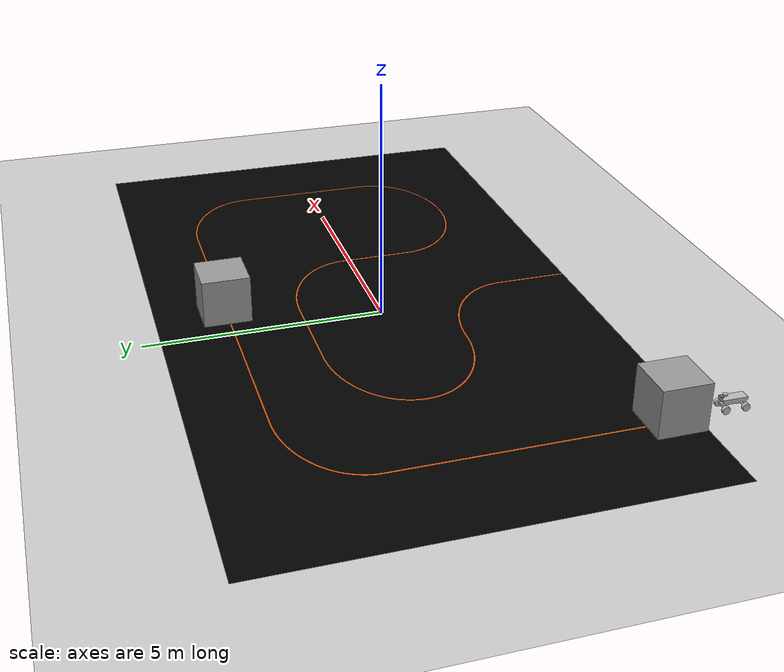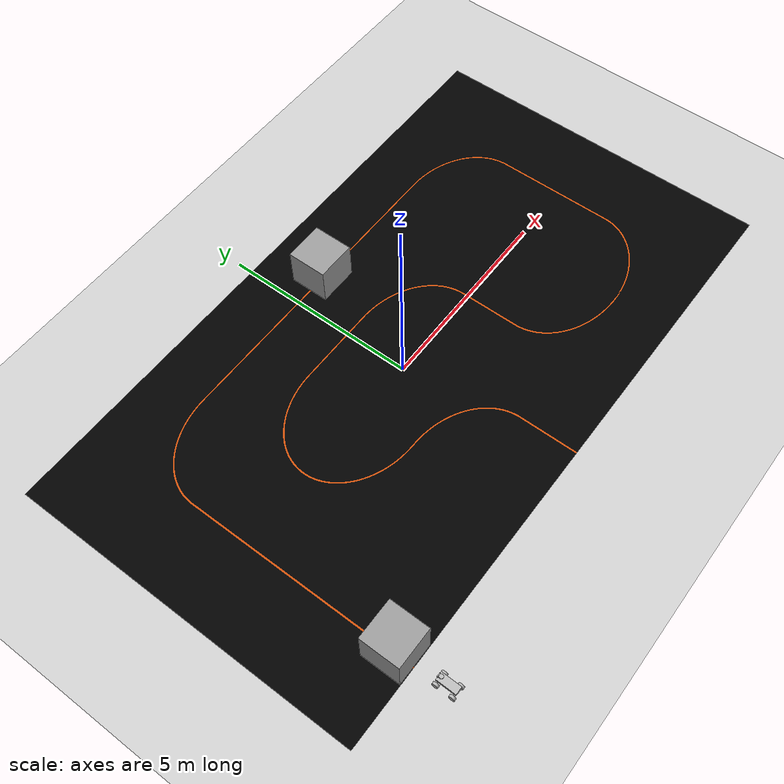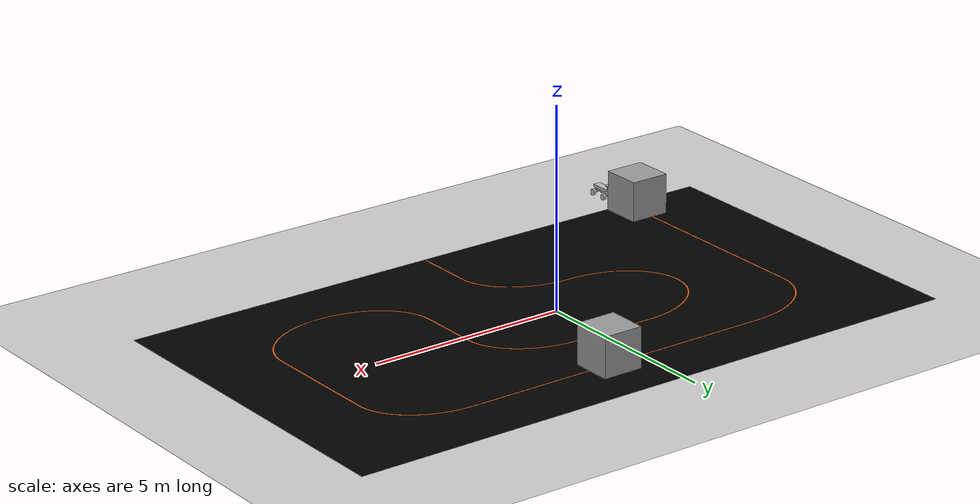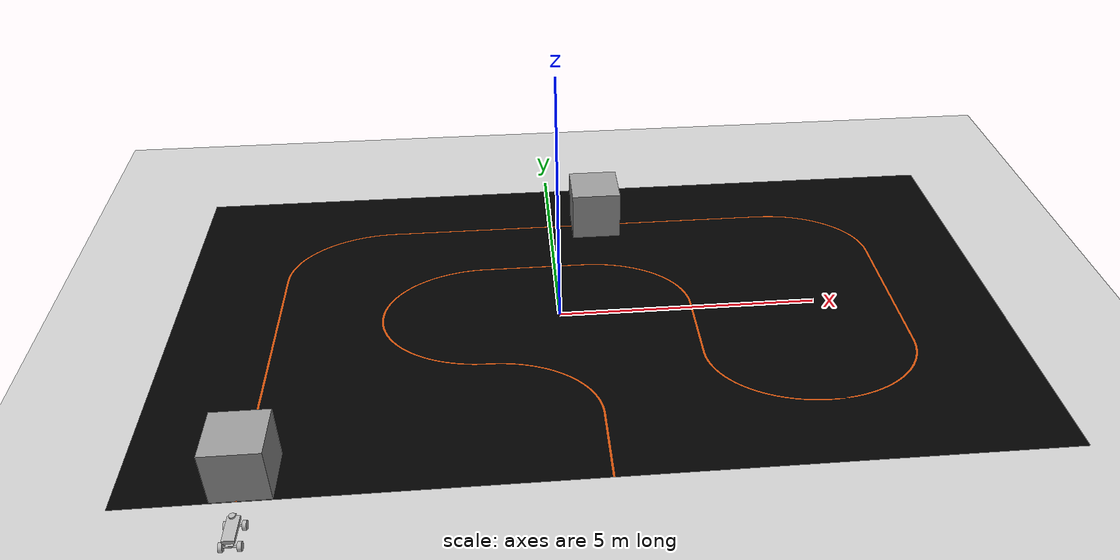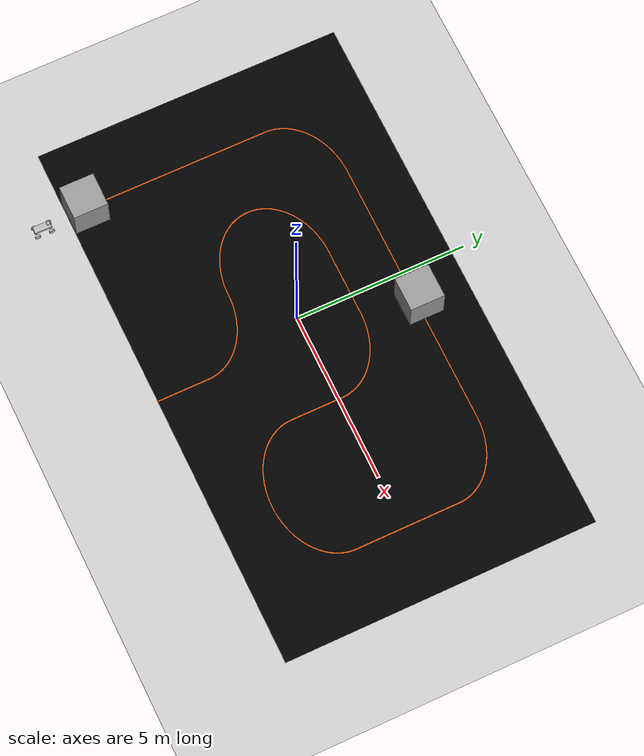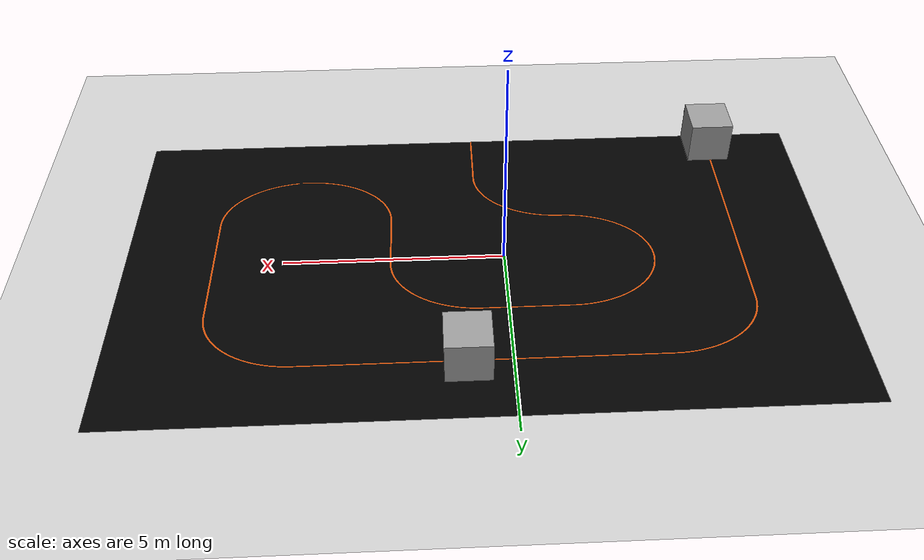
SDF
<sdf version="1.7">
 <world name="default">
  <light name="sun" type="directional">
   <pose>0 0 10 0 -0 0</pose>
   <diffuse>0.8 0.8 0.8 1</diffuse>
   <specular>0.2 0.2 0.2 1</specular>
   <attenuation>
    <range>1000</range>
    <constant>0.9</constant>
    <linear>0.01</linear>
    <quadratic>0.001</quadratic>
   </attenuation>
   <direction>-0.5 0.1 -0.9</direction>
   <spot><inner_angle>0</inner_angle><outer_angle>0</outer_angle><falloff>0</falloff></spot>
  </light>
  <model name="ground_plane">
   <static>1</static>
   <link name="link">
    <collision name="collision">
     <geometry><plane><normal>0 0 1</normal><size>100 100</size></plane></geometry>
     <surface>
      <contact><collide_bitmask>65535</collide_bitmask></contact>
      <friction><ode><mu>100</mu><mu2>50</mu2></ode></friction>
     </surface>
    </collision>
    <visual name="visual">
     <cast_shadows>0</cast_shadows>
     <geometry><plane><normal>0 0 1</normal><size>100 100</size></plane></geometry>
     <material>
      <script><uri>file://media/materials/scripts/gazebo.material</uri><name>Gazebo/Grey</name></script>
     </material>
    </visual>
   </link>
  </model>
  <gravity>0 0 -9.8</gravity>
  <magnetic_field>6e-06 2.3e-05 -4.2e-05</magnetic_field>
  <atmosphere type="adiabatic"/>
  <physics type="ode">
   <max_step_size>0.001</max_step_size>
   <real_time_factor>1</real_time_factor>
   <real_time_update_rate>1000</real_time_update_rate>
  </physics>
  <scene><ambient>0.4 0.4 0.4 1</ambient><background>0.7 0.7 0.7 1</background><shadows>1</shadows></scene>
  <audio><device>default</device></audio>
  <spherical_coordinates>
   <surface_model>EARTH_WGS84</surface_model>
   <latitude_deg>0</latitude_deg>
   <longitude_deg>0</longitude_deg>
   <elevation>0</elevation>
   <heading_deg>0</heading_deg>
  </spherical_coordinates>
  <model name="track_world">
   <static>1</static>
   <link name="track_world">
    <collision name="track_world">
     <geometry><mesh><uri>model://track_world/meshes/track.dae</uri></mesh></geometry>
    </collision>
    <visual name="track_world">
     <cast_shadows>0</cast_shadows>
     <geometry><mesh><uri>model://track_world/meshes/track.dae</uri><scale>2 1.5 1</scale></mesh></geometry>
     <material>
      <script><uri>model://track_world/meshes/track.dae</uri><name>Traffic lisht</name></script>
     </material>
    </visual>
   </link>
   <pose>0.581237 0.120096 0 0 -0 0</pose>
  </model>
  <model name="vuasrl_car">
   <link name="base_link">
    <inertial>
     <pose>0.023448 0 0.017304 0 -0 0</pose>
     <mass>3.034</mass>
     <inertia>
      <ixx>0.0163164</ixx>
      <ixy>0</ixy>
      <ixz>-0.006493</ixz>
      <iyy>0.0558286</iyy>
      <iyz>-2.74336e-13</iyz>
      <izz>0.0505655</izz>
     </inertia>
    </inertial>
    <collision name="base_link_fixed_joint_lump__baseplate_collision">
     <pose>0 0 0.03375 0 -0 0</pose>
     <geometry><box><size>0.5 0.2 0.0675</size></box></geometry>
    </collision>
    <collision name="base_link_fixed_joint_lump__camera_mount_collision_1">
     <pose>0.24 0 0.0605 0 -0 0</pose>
     <geometry><cylinder><length>0.05</length><radius>0.005</radius></cylinder></geometry>
    </collision>
    <collision name="base_link_fixed_joint_lump__camera_collision_2">
     <pose>0.24 0 0.1 0 0.5 0</pose>
     <geometry><box><size>0.024 0.094 0.029</size></box></geometry>
    </collision>
    <collision name="base_link_fixed_joint_lump__front_mount_collision_3">
     <pose>0 0 -0.059 0 -0 0</pose>
     <geometry><box><size>0.5 0.12 0.01</size></box></geometry>
    </collision>
    <collision name="base_link_fixed_joint_lump__front_shaft_collision_4">
     <pose>0.21 0 -0.118 1.5708 -0 0</pose>
     <geometry><cylinder><length>0.285</length><radius>0.018</radius></cylinder></geometry>
    </collision>
    <collision name="base_link_fixed_joint_lump__rear_shaft_collision_5">
     <pose>-0.2 0 -0.118 1.5708 -0 0</pose>
     <geometry><cylinder><length>0.285</length><radius>0.018</radius></cylinder></geometry>
    </collision>
    <collision name="base_link_fixed_joint_lump__laser_sensor_mount_collision_6">
     <pose>0.18 0 0.0925 0 -0 0</pose>
     <geometry><cylinder><length>0.05</length><radius>0.005</radius></cylinder></geometry>
    </collision>
    <collision name="base_link_fixed_joint_lump__laser_sensor_collision_7">
     <pose>0.18 0 0.132 0 -0 0</pose>
     <geometry><cylinder><length>0.029</length><radius>0.05</radius></cylinder></geometry>
    </collision>
    <visual name="base_link_fixed_joint_lump__baseplate_visual">
     <pose>0 0 0.03375 0 -0 0</pose>
     <geometry><box><size>0.5 0.2 0.0675</size></box></geometry>
    </visual>
    <visual name="base_link_fixed_joint_lump__camera_mount_visual_1">
     <pose>0.24 0 0.0605 0 -0 0</pose>
     <geometry><cylinder><length>0.05</length><radius>0.005</radius></cylinder></geometry>
    </visual>
    <visual name="base_link_fixed_joint_lump__camera_visual_2">
     <pose>0.24 0 0.1 0 0.5 0</pose>
     <geometry><box><size>0.024 0.094 0.029</size></box></geometry>
    </visual>
    <visual name="base_link_fixed_joint_lump__front_mount_visual_3">
     <pose>0 0 -0.059 0 -0 0</pose>
     <geometry><box><size>0.5 0.12 0.01</size></box></geometry>
    </visual>
    <visual name="base_link_fixed_joint_lump__front_shaft_visual_4">
     <pose>0.21 0 -0.118 1.5708 -0 0</pose>
     <geometry><cylinder><length>0.285</length><radius>0.018</radius></cylinder></geometry>
    </visual>
    <visual name="base_link_fixed_joint_lump__rear_shaft_visual_5">
     <pose>-0.2 0 -0.118 1.5708 -0 0</pose>
     <geometry><cylinder><length>0.285</length><radius>0.018</radius></cylinder></geometry>
    </visual>
    <visual name="base_link_fixed_joint_lump__laser_sensor_mount_visual_6">
     <pose>0.18 0 0.0925 0 -0 0</pose>
     <geometry><cylinder><length>0.05</length><radius>0.005</radius></cylinder></geometry>
    </visual>
    <visual name="base_link_fixed_joint_lump__laser_sensor_visual_7">
     <pose>0.18 0 0.132 0 -0 0</pose>
     <geometry><cylinder><length>0.029</length><radius>0.05</radius></cylinder></geometry>
    </visual>
    <sensor name="camera_sensor" type="camera">
     <always_on>1</always_on>
     <update_rate>15</update_rate>
     <camera name="camera">
      <horizontal_fov>1.2</horizontal_fov>
      <image><width>640</width><height>480</height><format>R8G8B8</format></image>
      <clip><near>0.02</near><far>300</far></clip>
      <distortion><k1>0</k1><k2>0</k2><k3>0</k3><p1>0</p1><p2>0</p2><center>0.5 0.5</center></distortion>
     </camera>
     <plugin name="camera_sensor" filename="libgazebo_ros_camera.so">
      <ros>
       <namespace>/vuasrl_car</namespace>
       <remapping>camera/image_raw:=/vuasrl_car/camera/rgb/image_raw</remapping>
       <remapping>camera/camera_info:=/vuasrl_car/camera/rgb/camera_info</remapping>
      </ros>
      <frame_name>camera</frame_name>
      <hack_baseline>0.07</hack_baseline>
     </plugin>
     <pose>0.24 0 0.1 0 0.5 0</pose>
    </sensor>
    <sensor name="head_hokuyo_sensor" type="ray">
     <visualize>1</visualize>
     <update_rate>40</update_rate>
     <ray>
      <scan>
       <horizontal>
        <samples>720</samples>
        <resolution>1</resolution>
        <min_angle>-1.5708</min_angle>
        <max_angle>1.5708</max_angle>
       </horizontal>
       <vertical><samples>1</samples><min_angle>0</min_angle><max_angle>0</max_angle></vertical>
      </scan>
      <range><min>0.5</min><max>4</max><resolution>0.01</resolution></range>
      <noise><type>gaussian</type><mean>0</mean><stddev>0.01</stddev></noise>
     </ray>
     <plugin name="gazebo_ros_head_hokuyo_controller" filename="libgazebo_ros_ray_sensor.so">
      <ros><namespace>/vuasrl_car</namespace><remapping>~/out:=/scan</remapping></ros>
      <output_type>sensor_msgs/LaserScan</output_type>
     </plugin>
     <pose>0.18 0 0.132 0 -0 0</pose>
    </sensor>
   </link>
   <joint name="front_left_hinge_joint" type="revolute">
    <pose relative_to="base_link">0.21 0.1425 -0.118 0 -0 0</pose>
    <parent>base_link</parent>
    <child>front_left_hinge</child>
    <axis>
     <xyz>0 0 1</xyz>
     <limit><lower>-0.349066</lower><upper>0.349066</upper><effort>10</effort><velocity>100</velocity></limit>
     <dynamics>
      <damping>0.1</damping>
      <friction>5</friction>
      <spring_reference>0</spring_reference>
      <spring_stiffness>0</spring_stiffness>
     </dynamics>
    </axis>
   </joint>
   <link name="front_left_hinge">
    <pose relative_to="front_left_hinge_joint">0 0 0 0 -0 0</pose>
    <inertial>
     <mass>0.05</mass>
     <inertia><ixx>1e-06</ixx><ixy>0</ixy><ixz>0</ixz><iyy>1e-06</iyy><iyz>0</iyz><izz>1e-06</izz></inertia>
    </inertial>
    <visual name="front_left_hinge_visual"><geometry><sphere><radius>0.015</radius></sphere></geometry></visual>
   </link>
   <joint name="front_left_wheel_joint" type="revolute">
    <pose relative_to="front_left_hinge">0 0 0 0 -0 0</pose>
    <parent>front_left_hinge</parent>
    <child>front_left_wheel</child>
    <axis>
     <xyz>0 1 0</xyz>
     <limit><effort>10</effort><velocity>100</velocity><lower>-1e+16</lower><upper>1e+16</upper></limit>
     <dynamics><spring_reference>0</spring_reference><spring_stiffness>0</spring_stiffness></dynamics>
    </axis>
   </joint>
   <link name="front_left_wheel">
    <pose relative_to="front_left_wheel_joint">0 0 0 0 -0 0</pose>
    <inertial>
     <pose>0 0 0 1.5708 -0 0</pose>
     <mass>0.15</mass>
     <inertia>
      <ixx>0.000276434</ixx>
      <ixy>0</ixy>
      <ixz>0</ixz>
      <iyy>0.000276434</iyy>
      <iyz>0</iyz>
      <izz>0.000450469</izz>
     </inertia>
    </inertial>
    <collision name="front_left_wheel_collision">
     <pose>0 0 0 1.5708 -0 0</pose>
     <geometry><cylinder><length>0.064</length><radius>0.0775</radius></cylinder></geometry>
    </collision>
    <visual name="front_left_wheel_visual">
     <pose>0 0 0 1.5708 -0 0</pose>
     <geometry><cylinder><length>0.064</length><radius>0.0775</radius></cylinder></geometry>
    </visual>
   </link>
   <joint name="front_right_hinge_joint" type="revolute">
    <pose relative_to="base_link">0.21 -0.1425 -0.118 0 -0 0</pose>
    <parent>base_link</parent>
    <child>front_right_hinge</child>
    <axis>
     <xyz>0 0 1</xyz>
     <limit><lower>-0.349066</lower><upper>0.349066</upper><effort>10</effort><velocity>100</velocity></limit>
     <dynamics>
      <damping>0.1</damping>
      <friction>5</friction>
      <spring_reference>0</spring_reference>
      <spring_stiffness>0</spring_stiffness>
     </dynamics>
    </axis>
   </joint>
   <link name="front_right_hinge">
    <pose relative_to="front_right_hinge_joint">0 0 0 0 -0 0</pose>
    <inertial>
     <mass>0.05</mass>
     <inertia><ixx>1e-06</ixx><ixy>0</ixy><ixz>0</ixz><iyy>1e-06</iyy><iyz>0</iyz><izz>1e-06</izz></inertia>
    </inertial>
    <visual name="front_right_hinge_visual"><geometry><sphere><radius>0.015</radius></sphere></geometry></visual>
   </link>
   <joint name="front_right_wheel_joint" type="revolute">
    <pose relative_to="front_right_hinge">0 0 0 0 -0 0</pose>
    <parent>front_right_hinge</parent>
    <child>front_right_wheel</child>
    <axis>
     <xyz>0 1 0</xyz>
     <limit><effort>10</effort><velocity>100</velocity><lower>-1e+16</lower><upper>1e+16</upper></limit>
     <dynamics><spring_reference>0</spring_reference><spring_stiffness>0</spring_stiffness></dynamics>
    </axis>
   </joint>
   <link name="front_right_wheel">
    <pose relative_to="front_right_wheel_joint">0 0 0 0 -0 0</pose>
    <inertial>
     <pose>0 0 0 1.5708 -0 0</pose>
     <mass>0.15</mass>
     <inertia>
      <ixx>0.000276434</ixx>
      <ixy>0</ixy>
      <ixz>0</ixz>
      <iyy>0.000276434</iyy>
      <iyz>0</iyz>
      <izz>0.000450469</izz>
     </inertia>
    </inertial>
    <collision name="front_right_wheel_collision">
     <pose>0 0 0 1.5708 -0 0</pose>
     <geometry><cylinder><length>0.064</length><radius>0.0775</radius></cylinder></geometry>
    </collision>
    <visual name="front_right_wheel_visual">
     <pose>0 0 0 1.5708 -0 0</pose>
     <geometry><cylinder><length>0.064</length><radius>0.0775</radius></cylinder></geometry>
    </visual>
   </link>
   <joint name="steering_joint" type="revolute">
    <pose relative_to="base_link">0.21 0 -0.118 0 -0 0</pose>
    <parent>base_link</parent>
    <child>steering_wheel</child>
    <axis>
     <xyz>0 0 1</xyz>
     <limit><lower>-0.349066</lower><upper>0.349066</upper><effort>10</effort><velocity>100</velocity></limit>
     <dynamics><spring_reference>0</spring_reference><spring_stiffness>0</spring_stiffness></dynamics>
    </axis>
   </joint>
   <link name="steering_wheel">
    <pose relative_to="steering_joint">0 0 0 0 -0 0</pose>
    <inertial>
     <mass>0.05</mass>
     <inertia><ixx>1e-06</ixx><ixy>0</ixy><ixz>0</ixz><iyy>1e-06</iyy><iyz>0</iyz><izz>1e-06</izz></inertia>
    </inertial>
    <collision name="steering_wheel_collision">
     <geometry><sphere><radius>0.015</radius></sphere></geometry>
    </collision>
    <visual name="steering_wheel_visual"><geometry><sphere><radius>0.015</radius></sphere></geometry></visual>
   </link>
   <joint name="rear_left_wheel_joint" type="revolute">
    <pose relative_to="base_link">-0.2 0.1425 -0.118 0 -0 0</pose>
    <parent>base_link</parent>
    <child>rear_left_wheel</child>
    <axis>
     <xyz>0 1 0</xyz>
     <limit><effort>10</effort><velocity>100</velocity><lower>-1e+16</lower><upper>1e+16</upper></limit>
     <dynamics>
      <damping>0.2</damping>
      <friction>0</friction>
      <spring_reference>0</spring_reference>
      <spring_stiffness>0</spring_stiffness>
     </dynamics>
    </axis>
   </joint>
   <link name="rear_left_wheel">
    <pose relative_to="rear_left_wheel_joint">0 0 0 0 -0 0</pose>
    <inertial>
     <pose>0 0 0 1.5708 -0 0</pose>
     <mass>0.15</mass>
     <inertia>
      <ixx>0.000276434</ixx>
      <ixy>0</ixy>
      <ixz>0</ixz>
      <iyy>0.000276434</iyy>
      <iyz>0</iyz>
      <izz>0.000450469</izz>
     </inertia>
    </inertial>
    <collision name="rear_left_wheel_collision">
     <pose>0 0 0 1.5708 -0 0</pose>
     <geometry><cylinder><length>0.064</length><radius>0.0775</radius></cylinder></geometry>
    </collision>
    <visual name="rear_left_wheel_visual">
     <pose>0 0 0 1.5708 -0 0</pose>
     <geometry><cylinder><length>0.064</length><radius>0.0775</radius></cylinder></geometry>
    </visual>
   </link>
   <joint name="rear_right_wheel_joint" type="revolute">
    <pose relative_to="base_link">-0.2 -0.1425 -0.118 0 -0 0</pose>
    <parent>base_link</parent>
    <child>rear_right_wheel</child>
    <axis>
     <xyz>0 1 0</xyz>
     <limit><effort>10</effort><velocity>100</velocity><lower>-1e+16</lower><upper>1e+16</upper></limit>
     <dynamics>
      <damping>0.2</damping>
      <friction>0</friction>
      <spring_reference>0</spring_reference>
      <spring_stiffness>0</spring_stiffness>
     </dynamics>
    </axis>
   </joint>
   <link name="rear_right_wheel">
    <pose relative_to="rear_right_wheel_joint">0 0 0 0 -0 0</pose>
    <inertial>
     <pose>0 0 0 1.5708 -0 0</pose>
     <mass>0.15</mass>
     <inertia>
      <ixx>0.000276434</ixx>
      <ixy>0</ixy>
      <ixz>0</ixz>
      <iyy>0.000276434</iyy>
      <iyz>0</iyz>
      <izz>0.000450469</izz>
     </inertia>
    </inertial>
    <collision name="rear_right_wheel_collision">
     <pose>0 0 0 1.5708 -0 0</pose>
     <geometry><cylinder><length>0.064</length><radius>0.0775</radius></cylinder></geometry>
    </collision>
    <visual name="rear_right_wheel_visual">
     <pose>0 0 0 1.5708 -0 0</pose>
     <geometry><cylinder><length>0.064</length><radius>0.0775</radius></cylinder></geometry>
    </visual>
   </link>
   <static>0</static>
   <plugin name="joint_states" filename="libgazebo_ros_joint_state_publisher.so">
    <joint_name>front_left_hinge_joint</joint_name>
    <joint_name>front_right_hinge_joint</joint_name>
    <joint_name>front_left_wheel_joint</joint_name>
    <joint_name>front_right_wheel_joint</joint_name>
    <joint_name>rear_right_wheel_joint</joint_name>
    <joint_name>rear_left_wheel_joint</joint_name>
   </plugin>
   <plugin name="ackermann_drive" filename="libgazebo_ros_ackermann_drive.so">
    <ros>
     <namespace>/vuasrl_car</namespace>
     <remapping>cmd_vel:=cmd_vel</remapping>
     <remapping>odom:=odom</remapping>
     <remapping>distance:=distance</remapping>
    </ros>
    <update_rate>100</update_rate>
    <front_left_joint>front_left_wheel_joint</front_left_joint>
    <front_right_joint>front_right_wheel_joint</front_right_joint>
    <rear_left_joint>rear_left_wheel_joint</rear_left_joint>
    <rear_right_joint>rear_right_wheel_joint</rear_right_joint>
    <left_steering_joint>front_left_hinge_joint</left_steering_joint>
    <right_steering_joint>front_right_hinge_joint</right_steering_joint>
    <steering_wheel_joint>steering_joint</steering_wheel_joint>
    <max_steer>0.6458</max_steer>
    <max_steering_angle>7.85</max_steering_angle>
    <max_speed>10</max_speed>
    <left_steering_pid_gain>1500 0 1</left_steering_pid_gain>
    <left_steering_i_range>0 0</left_steering_i_range>
    <right_steering_pid_gain>1500 0 1</right_steering_pid_gain>
    <right_steering_i_range>0 0</right_steering_i_range>
    <linear_velocity_pid_gain>1000 0 1</linear_velocity_pid_gain>
    <linear_velocity_i_range>0 0</linear_velocity_i_range>
    <publish_distance>1</publish_distance>
    <publish_wheel_tF>1</publish_wheel_tF>
    <publish_odom>1</publish_odom>
    <publish_odom_tf>1</publish_odom_tf>
    <odometry_frame>odom</odometry_frame>
    <robot_base_frame>base_link</robot_base_frame>
   </plugin>
   <pose>-5.3084 -5.14984 0.195498 1.1e-05 -5e-06 1.56065</pose>
  </model>
  <model name="unit_box_0">
   <pose>0.954524 3.16914 0.50091 -0.001824 -3e-06 1.4e-05</pose>
   <link name="link">
    <inertial>
     <mass>1</mass>
     <inertia>
      <ixx>0.166667</ixx>
      <ixy>0</ixy>
      <ixz>0</ixz>
      <iyy>0.166667</iyy>
      <iyz>0</iyz>
      <izz>0.166667</izz>
     </inertia>
    </inertial>
    <collision name="collision"><geometry><box><size>1 1 1</size></box></geometry></collision>
    <visual name="visual">
     <geometry><box><size>1 1 1</size></box></geometry>
     <material>
      <script><name>Gazebo/Grey</name><uri>file://media/materials/scripts/gazebo.material</uri></script>
     </material>
    </visual>
   </link>
  </model>
  <model name="unit_box">
   <pose>-5.34627 -3.85799 0.5 0 0 -0.000236</pose>
   <link name="link">
    <inertial>
     <mass>1</mass>
     <inertia>
      <ixx>0.166667</ixx>
      <ixy>0</ixy>
      <ixz>0</ixz>
      <iyy>0.166667</iyy>
      <iyz>0</iyz>
      <izz>0.166667</izz>
     </inertia>
    </inertial>
    <collision name="collision"><geometry><box><size>1 1 1</size></box></geometry></collision>
    <visual name="visual">
     <geometry><box><size>1 1 1</size></box></geometry>
     <material>
      <script><name>Gazebo/Grey</name><uri>file://media/materials/scripts/gazebo.material</uri></script>
     </material>
    </visual>
   </link>
  </model>
 </world>
</sdf>
